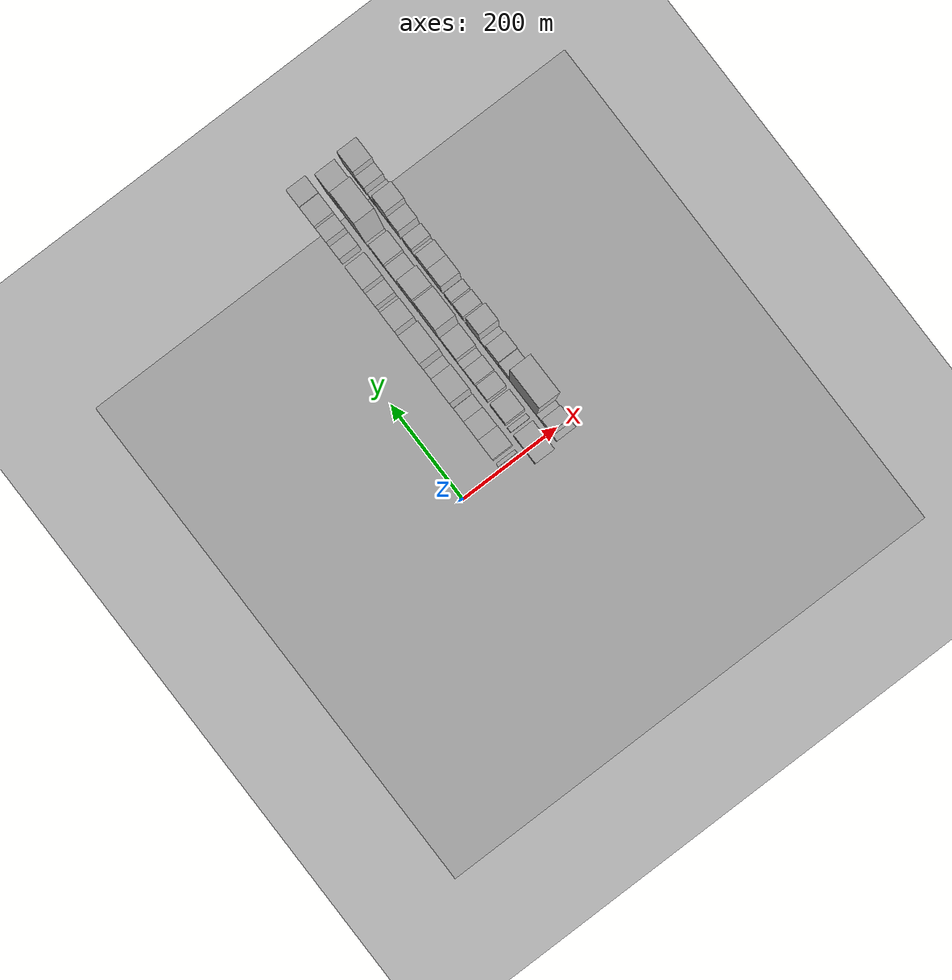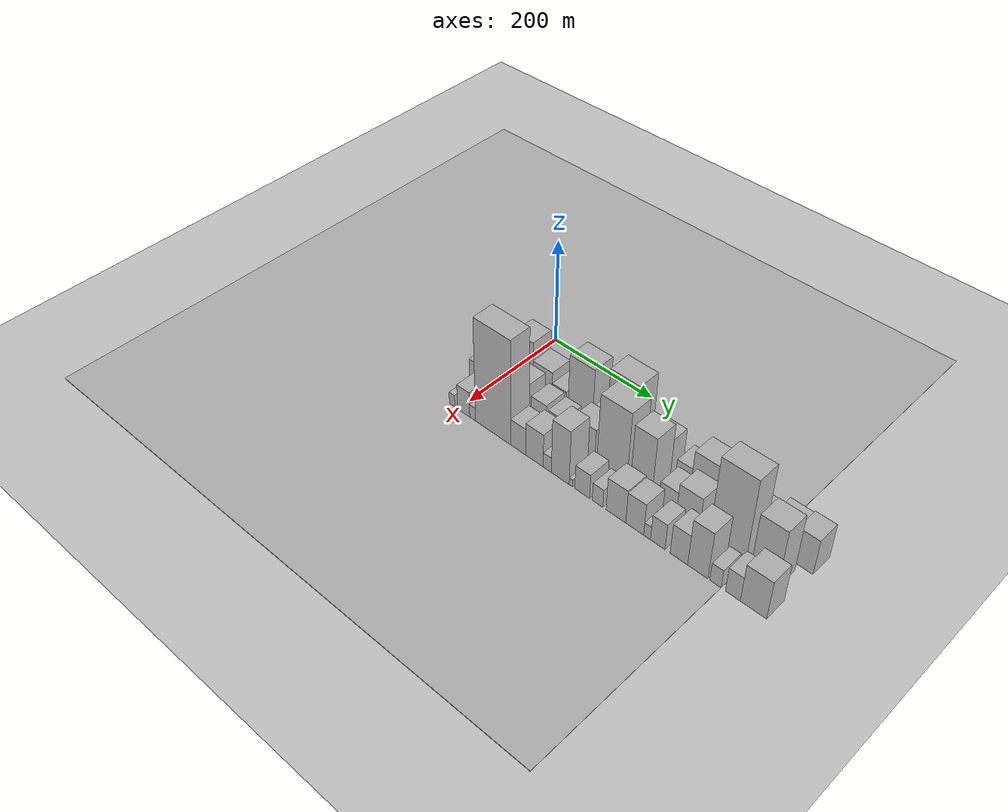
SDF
<sdf version="1.6">
 <world name="default">
  <include><name>ground_plane_1</name><uri>model://HANNAS_ground_plane</uri></include>
  <include>
   <name>ground_plane_2</name>
   <uri>model://HANNAS_ground_plane</uri>
   <pose>100 0 0  0 0 0</pose>
  </include>
  <model name="building_19">
   <static>1</static>
   <pose>100.0000 9.9743 0 0.000000 0.000000 0.000000</pose>
   <link name="link">
    <pose>0 0 7.50 0 0 0</pose>
    <collision name="collision"><geometry><box><size>40.0000 6.6705 15.0000</size></box></geometry></collision>
    <visual name="visual">
     <cast_shadows>0</cast_shadows>
     <geometry><box><size>40.0000 6.6705 15.0000</size></box></geometry>
     <material>
      <script>
       <uri>model://HANNAS_wall/materials/scripts</uri>
       <uri>model://HANNAS_wall/materials/textures</uri>
       <name>vrc/HANNAS_wall</name>
      </script>
     </material>
    </visual>
   </link>
  </model>
  <model name="building_20">
   <static>1</static>
   <pose>100.0000 39.8482 0 0.000000 0.000000 0.000000</pose>
   <link name="link">
    <pose>0 0 52.50 0 0 0</pose>
    <collision name="collision"><geometry><box><size>40.0000 39.0774 105.0000</size></box></geometry></collision>
    <visual name="visual">
     <cast_shadows>0</cast_shadows>
     <geometry><box><size>40.0000 39.0774 105.0000</size></box></geometry>
     <material>
      <script>
       <uri>model://HANNAS_wall/materials/scripts</uri>
       <uri>model://HANNAS_wall/materials/textures</uri>
       <name>vrc/HANNAS_wall</name>
      </script>
     </material>
    </visual>
   </link>
  </model>
  <model name="building_21">
   <static>1</static>
   <pose>100.0000 79.3136 0 0.000000 0.000000 0.000000</pose>
   <link name="link">
    <pose>0 0 34.50 0 0 0</pose>
    <collision name="collision"><geometry><box><size>40.0000 39.8534 69.0000</size></box></geometry></collision>
    <visual name="visual">
     <cast_shadows>0</cast_shadows>
     <geometry><box><size>40.0000 39.8534 69.0000</size></box></geometry>
     <material>
      <script>
       <uri>model://HANNAS_wall/materials/scripts</uri>
       <uri>model://HANNAS_wall/materials/textures</uri>
       <name>vrc/HANNAS_wall</name>
      </script>
     </material>
    </visual>
   </link>
  </model>
  <model name="building_22">
   <static>1</static>
   <pose>100.0000 113.6267 0 0.000000 0.000000 0.000000</pose>
   <link name="link">
    <pose>0 0 24.00 0 0 0</pose>
    <collision name="collision"><geometry><box><size>40.0000 28.7727 48.0000</size></box></geometry></collision>
    <visual name="visual">
     <cast_shadows>0</cast_shadows>
     <geometry><box><size>40.0000 28.7727 48.0000</size></box></geometry>
     <material>
      <script>
       <uri>model://HANNAS_wall/materials/scripts</uri>
       <uri>model://HANNAS_wall/materials/textures</uri>
       <name>vrc/HANNAS_wall</name>
      </script>
     </material>
    </visual>
   </link>
  </model>
  <model name="building_23">
   <static>1</static>
   <pose>100.0000 156.3978 0 0.000000 0.000000 0.000000</pose>
   <link name="link">
    <pose>0 0 63.00 0 0 0</pose>
    <collision name="collision"><geometry><box><size>40.0000 48.7695 126.0000</size></box></geometry></collision>
    <visual name="visual">
     <cast_shadows>0</cast_shadows>
     <geometry><box><size>40.0000 48.7695 126.0000</size></box></geometry>
     <material>
      <script>
       <uri>model://HANNAS_wall/materials/scripts</uri>
       <uri>model://HANNAS_wall/materials/textures</uri>
       <name>vrc/HANNAS_wall</name>
      </script>
     </material>
    </visual>
   </link>
  </model>
  <model name="building_24">
   <static>1</static>
   <pose>100.0000 194.5604 0 0.000000 0.000000 0.000000</pose>
   <link name="link">
    <pose>0 0 27.00 0 0 0</pose>
    <collision name="collision"><geometry><box><size>40.0000 27.5558 54.0000</size></box></geometry></collision>
    <visual name="visual">
     <cast_shadows>0</cast_shadows>
     <geometry><box><size>40.0000 27.5558 54.0000</size></box></geometry>
     <material>
      <script>
       <uri>model://HANNAS_wall/materials/scripts</uri>
       <uri>model://HANNAS_wall/materials/textures</uri>
       <name>vrc/HANNAS_wall</name>
      </script>
     </material>
    </visual>
   </link>
  </model>
  <model name="building_25">
   <static>1</static>
   <pose>100.0000 236.0614 0 0.000000 0.000000 0.000000</pose>
   <link name="link">
    <pose>0 0 73.50 0 0 0</pose>
    <collision name="collision"><geometry><box><size>40.0000 55.4461 147.0000</size></box></geometry></collision>
    <visual name="visual">
     <cast_shadows>0</cast_shadows>
     <geometry><box><size>40.0000 55.4461 147.0000</size></box></geometry>
     <material>
      <script>
       <uri>model://HANNAS_wall/materials/scripts</uri>
       <uri>model://HANNAS_wall/materials/textures</uri>
       <name>vrc/HANNAS_wall</name>
      </script>
     </material>
    </visual>
   </link>
  </model>
  <model name="building_26">
   <static>1</static>
   <pose>100.0000 269.3358 0 0.000000 0.000000 0.000000</pose>
   <link name="link">
    <pose>0 0 13.50 0 0 0</pose>
    <collision name="collision"><geometry><box><size>40.0000 11.1029 27.0000</size></box></geometry></collision>
    <visual name="visual">
     <cast_shadows>0</cast_shadows>
     <geometry><box><size>40.0000 11.1029 27.0000</size></box></geometry>
     <material>
      <script>
       <uri>model://HANNAS_wall/materials/scripts</uri>
       <uri>model://HANNAS_wall/materials/textures</uri>
       <name>vrc/HANNAS_wall</name>
      </script>
     </material>
    </visual>
   </link>
  </model>
  <model name="building_27">
   <static>1</static>
   <pose>100.0000 303.4332 0 0.000000 0.000000 0.000000</pose>
   <link name="link">
    <pose>0 0 37.50 0 0 0</pose>
    <collision name="collision"><geometry><box><size>40.0000 39.0918 75.0000</size></box></geometry></collision>
    <visual name="visual">
     <cast_shadows>0</cast_shadows>
     <geometry><box><size>40.0000 39.0918 75.0000</size></box></geometry>
     <material>
      <script>
       <uri>model://HANNAS_wall/materials/scripts</uri>
       <uri>model://HANNAS_wall/materials/textures</uri>
       <name>vrc/HANNAS_wall</name>
      </script>
     </material>
    </visual>
   </link>
  </model>
  <model name="building_28">
   <static>1</static>
   <pose>100.0000 335.3981 0 0.000000 0.000000 0.000000</pose>
   <link name="link">
    <pose>0 0 7.50 0 0 0</pose>
    <collision name="collision"><geometry><box><size>40.0000 6.8379 15.0000</size></box></geometry></collision>
    <visual name="visual">
     <cast_shadows>0</cast_shadows>
     <geometry><box><size>40.0000 6.8379 15.0000</size></box></geometry>
     <material>
      <script>
       <uri>model://HANNAS_wall/materials/scripts</uri>
       <uri>model://HANNAS_wall/materials/textures</uri>
       <name>vrc/HANNAS_wall</name>
      </script>
     </material>
    </visual>
   </link>
  </model>
  <model name="building_29">
   <static>1</static>
   <pose>100.0000 352.5228 0 0.000000 0.000000 0.000000</pose>
   <link name="link">
    <pose>0 0 27.00 0 0 0</pose>
    <collision name="collision"><geometry><box><size>40.0000 27.4115 54.0000</size></box></geometry></collision>
    <visual name="visual">
     <cast_shadows>0</cast_shadows>
     <geometry><box><size>40.0000 27.4115 54.0000</size></box></geometry>
     <material>
      <script>
       <uri>model://HANNAS_wall/materials/scripts</uri>
       <uri>model://HANNAS_wall/materials/textures</uri>
       <name>vrc/HANNAS_wall</name>
      </script>
     </material>
    </visual>
   </link>
  </model>
  <model name="building_30">
   <static>1</static>
   <pose>100.0000 389.9765 0 0.000000 0.000000 0.000000</pose>
   <link name="link">
    <pose>0 0 45.00 0 0 0</pose>
    <collision name="collision"><geometry><box><size>40.0000 47.4959 90.0000</size></box></geometry></collision>
    <visual name="visual">
     <cast_shadows>0</cast_shadows>
     <geometry><box><size>40.0000 47.4959 90.0000</size></box></geometry>
     <material>
      <script>
       <uri>model://HANNAS_wall/materials/scripts</uri>
       <uri>model://HANNAS_wall/materials/textures</uri>
       <name>vrc/HANNAS_wall</name>
      </script>
     </material>
    </visual>
   </link>
  </model>
  <model name="building_31">
   <static>1</static>
   <pose>100.0000 426.9344 0 0.000000 0.000000 0.000000</pose>
   <link name="link">
    <pose>0 0 7.50 0 0 0</pose>
    <collision name="collision"><geometry><box><size>40.0000 6.4199 15.0000</size></box></geometry></collision>
    <visual name="visual">
     <cast_shadows>0</cast_shadows>
     <geometry><box><size>40.0000 6.4199 15.0000</size></box></geometry>
     <material>
      <script>
       <uri>model://HANNAS_wall/materials/scripts</uri>
       <uri>model://HANNAS_wall/materials/textures</uri>
       <name>vrc/HANNAS_wall</name>
      </script>
     </material>
    </visual>
   </link>
  </model>
  <model name="building_32">
   <static>1</static>
   <pose>100.0000 452.2859 0 0.000000 0.000000 0.000000</pose>
   <link name="link">
    <pose>0 0 22.50 0 0 0</pose>
    <collision name="collision"><geometry><box><size>40.0000 26.2831 45.0000</size></box></geometry></collision>
    <visual name="visual">
     <cast_shadows>0</cast_shadows>
     <geometry><box><size>40.0000 26.2831 45.0000</size></box></geometry>
     <material>
      <script>
       <uri>model://HANNAS_wall/materials/scripts</uri>
       <uri>model://HANNAS_wall/materials/textures</uri>
       <name>vrc/HANNAS_wall</name>
      </script>
     </material>
    </visual>
   </link>
  </model>
  <model name="building_33">
   <static>1</static>
   <pose>100.0000 487.6147 0 0.000000 0.000000 0.000000</pose>
   <link name="link">
    <pose>0 0 25.50 0 0 0</pose>
    <collision name="collision"><geometry><box><size>40.0000 28.3746 51.0000</size></box></geometry></collision>
    <visual name="visual">
     <cast_shadows>0</cast_shadows>
     <geometry><box><size>40.0000 28.3746 51.0000</size></box></geometry>
     <material>
      <script>
       <uri>model://HANNAS_wall/materials/scripts</uri>
       <uri>model://HANNAS_wall/materials/textures</uri>
       <name>vrc/HANNAS_wall</name>
      </script>
     </material>
    </visual>
   </link>
  </model>
  <model name="building_34">
   <static>1</static>
   <pose>100.0000 521.4848 0 0.000000 0.000000 0.000000</pose>
   <link name="link">
    <pose>0 0 33.00 0 0 0</pose>
    <collision name="collision"><geometry><box><size>40.0000 39.3657 66.0000</size></box></geometry></collision>
    <visual name="visual">
     <cast_shadows>0</cast_shadows>
     <geometry><box><size>40.0000 39.3657 66.0000</size></box></geometry>
     <material>
      <script>
       <uri>model://HANNAS_wall/materials/scripts</uri>
       <uri>model://HANNAS_wall/materials/textures</uri>
       <name>vrc/HANNAS_wall</name>
      </script>
     </material>
    </visual>
   </link>
  </model>
  <model name="building_35">
   <static>1</static>
   <pose>100.0000 558.9215 0 0.000000 0.000000 0.000000</pose>
   <link name="link">
    <pose>0 0 34.50 0 0 0</pose>
    <collision name="collision"><geometry><box><size>40.0000 35.5076 69.0000</size></box></geometry></collision>
    <visual name="visual">
     <cast_shadows>0</cast_shadows>
     <geometry><box><size>40.0000 35.5076 69.0000</size></box></geometry>
     <material>
      <script>
       <uri>model://HANNAS_wall/materials/scripts</uri>
       <uri>model://HANNAS_wall/materials/textures</uri>
       <name>vrc/HANNAS_wall</name>
      </script>
     </material>
    </visual>
   </link>
  </model>
  <model name="building_54">
   <static>1</static>
   <pose>152.0000 -12.6384 0 0.000000 0.000000 0.000000</pose>
   <link name="link">
    <pose>0 0 27.00 0 0 0</pose>
    <collision name="collision"><geometry><box><size>40.0000 28.6844 54.0000</size></box></geometry></collision>
    <visual name="visual">
     <cast_shadows>0</cast_shadows>
     <geometry><box><size>40.0000 28.6844 54.0000</size></box></geometry>
     <material>
      <script>
       <uri>model://HANNAS_wall/materials/scripts</uri>
       <uri>model://HANNAS_wall/materials/textures</uri>
       <name>vrc/HANNAS_wall</name>
      </script>
     </material>
    </visual>
   </link>
  </model>
  <model name="building_55">
   <static>1</static>
   <pose>152.0000 17.1598 0 0.000000 0.000000 0.000000</pose>
   <link name="link">
    <pose>0 0 28.50 0 0 0</pose>
    <collision name="collision"><geometry><box><size>40.0000 30.9120 57.0000</size></box></geometry></collision>
    <visual name="visual">
     <cast_shadows>0</cast_shadows>
     <geometry><box><size>40.0000 30.9120 57.0000</size></box></geometry>
     <material>
      <script>
       <uri>model://HANNAS_wall/materials/scripts</uri>
       <uri>model://HANNAS_wall/materials/textures</uri>
       <name>vrc/HANNAS_wall</name>
      </script>
     </material>
    </visual>
   </link>
  </model>
  <model name="building_56">
   <static>1</static>
   <pose>152.0000 44.6072 0 0.000000 0.000000 0.000000</pose>
   <link name="link">
    <pose>0 0 10.50 0 0 0</pose>
    <collision name="collision"><geometry><box><size>40.0000 9.9827 21.0000</size></box></geometry></collision>
    <visual name="visual">
     <cast_shadows>0</cast_shadows>
     <geometry><box><size>40.0000 9.9827 21.0000</size></box></geometry>
     <material>
      <script>
       <uri>model://HANNAS_wall/materials/scripts</uri>
       <uri>model://HANNAS_wall/materials/textures</uri>
       <name>vrc/HANNAS_wall</name>
      </script>
     </material>
    </visual>
   </link>
  </model>
  <model name="building_57">
   <static>1</static>
   <pose>152.0000 75.2564 0 0.000000 0.000000 0.000000</pose>
   <link name="link">
    <pose>0 0 37.50 0 0 0</pose>
    <collision name="collision"><geometry><box><size>40.0000 41.3159 75.0000</size></box></geometry></collision>
    <visual name="visual">
     <cast_shadows>0</cast_shadows>
     <geometry><box><size>40.0000 41.3159 75.0000</size></box></geometry>
     <material>
      <script>
       <uri>model://HANNAS_wall/materials/scripts</uri>
       <uri>model://HANNAS_wall/materials/textures</uri>
       <name>vrc/HANNAS_wall</name>
      </script>
     </material>
    </visual>
   </link>
  </model>
  <model name="building_58">
   <static>1</static>
   <pose>152.0000 119.2833 0 0.000000 0.000000 0.000000</pose>
   <link name="link">
    <pose>0 0 30.00 0 0 0</pose>
    <collision name="collision"><geometry><box><size>40.0000 30.7379 60.0000</size></box></geometry></collision>
    <visual name="visual">
     <cast_shadows>0</cast_shadows>
     <geometry><box><size>40.0000 30.7379 60.0000</size></box></geometry>
     <material>
      <script>
       <uri>model://HANNAS_wall/materials/scripts</uri>
       <uri>model://HANNAS_wall/materials/textures</uri>
       <name>vrc/HANNAS_wall</name>
      </script>
     </material>
    </visual>
   </link>
  </model>
  <model name="building_59">
   <static>1</static>
   <pose>152.0000 153.0333 0 0.000000 0.000000 0.000000</pose>
   <link name="link">
    <pose>0 0 27.00 0 0 0</pose>
    <collision name="collision"><geometry><box><size>40.0000 30.7620 54.0000</size></box></geometry></collision>
    <visual name="visual">
     <cast_shadows>0</cast_shadows>
     <geometry><box><size>40.0000 30.7620 54.0000</size></box></geometry>
     <material>
      <script>
       <uri>model://HANNAS_wall/materials/scripts</uri>
       <uri>model://HANNAS_wall/materials/textures</uri>
       <name>vrc/HANNAS_wall</name>
      </script>
     </material>
    </visual>
   </link>
  </model>
  <model name="building_60">
   <static>1</static>
   <pose>152.0000 177.4689 0 0.000000 0.000000 0.000000</pose>
   <link name="link">
    <pose>0 0 16.50 0 0 0</pose>
    <collision name="collision"><geometry><box><size>40.0000 18.1092 33.0000</size></box></geometry></collision>
    <visual name="visual">
     <cast_shadows>0</cast_shadows>
     <geometry><box><size>40.0000 18.1092 33.0000</size></box></geometry>
     <material>
      <script>
       <uri>model://HANNAS_wall/materials/scripts</uri>
       <uri>model://HANNAS_wall/materials/textures</uri>
       <name>vrc/HANNAS_wall</name>
      </script>
     </material>
    </visual>
   </link>
  </model>
  <model name="building_61">
   <static>1</static>
   <pose>152.0000 208.6309 0 0.000000 0.000000 0.000000</pose>
   <link name="link">
    <pose>0 0 37.50 0 0 0</pose>
    <collision name="collision"><geometry><box><size>40.0000 44.2148 75.0000</size></box></geometry></collision>
    <visual name="visual">
     <cast_shadows>0</cast_shadows>
     <geometry><box><size>40.0000 44.2148 75.0000</size></box></geometry>
     <material>
      <script>
       <uri>model://HANNAS_wall/materials/scripts</uri>
       <uri>model://HANNAS_wall/materials/textures</uri>
       <name>vrc/HANNAS_wall</name>
      </script>
     </material>
    </visual>
   </link>
  </model>
  <model name="building_62">
   <static>1</static>
   <pose>152.0000 263.2704 0 0.000000 0.000000 0.000000</pose>
   <link name="link">
    <pose>0 0 75.00 0 0 0</pose>
    <collision name="collision"><geometry><box><size>40.0000 57.0642 150.0000</size></box></geometry></collision>
    <visual name="visual">
     <cast_shadows>0</cast_shadows>
     <geometry><box><size>40.0000 57.0642 150.0000</size></box></geometry>
     <material>
      <script>
       <uri>model://HANNAS_wall/materials/scripts</uri>
       <uri>model://HANNAS_wall/materials/textures</uri>
       <name>vrc/HANNAS_wall</name>
      </script>
     </material>
    </visual>
   </link>
  </model>
  <model name="building_63">
   <static>1</static>
   <pose>152.0000 317.6546 0 0.000000 0.000000 0.000000</pose>
   <link name="link">
    <pose>0 0 66.00 0 0 0</pose>
    <collision name="collision"><geometry><box><size>40.0000 39.7042 132.0000</size></box></geometry></collision>
    <visual name="visual">
     <cast_shadows>0</cast_shadows>
     <geometry><box><size>40.0000 39.7042 132.0000</size></box></geometry>
     <material>
      <script>
       <uri>model://HANNAS_wall/materials/scripts</uri>
       <uri>model://HANNAS_wall/materials/textures</uri>
       <name>vrc/HANNAS_wall</name>
      </script>
     </material>
    </visual>
   </link>
  </model>
  <model name="building_64">
   <static>1</static>
   <pose>152.0000 343.7132 0 0.000000 0.000000 0.000000</pose>
   <link name="link">
    <pose>0 0 13.50 0 0 0</pose>
    <collision name="collision"><geometry><box><size>40.0000 12.4129 27.0000</size></box></geometry></collision>
    <visual name="visual">
     <cast_shadows>0</cast_shadows>
     <geometry><box><size>40.0000 12.4129 27.0000</size></box></geometry>
     <material>
      <script>
       <uri>model://HANNAS_wall/materials/scripts</uri>
       <uri>model://HANNAS_wall/materials/textures</uri>
       <name>vrc/HANNAS_wall</name>
      </script>
     </material>
    </visual>
   </link>
  </model>
  <model name="building_65">
   <static>1</static>
   <pose>152.0000 365.7689 0 0.000000 0.000000 0.000000</pose>
   <link name="link">
    <pose>0 0 28.50 0 0 0</pose>
    <collision name="collision"><geometry><box><size>40.0000 31.6985 57.0000</size></box></geometry></collision>
    <visual name="visual">
     <cast_shadows>0</cast_shadows>
     <geometry><box><size>40.0000 31.6985 57.0000</size></box></geometry>
     <material>
      <script>
       <uri>model://HANNAS_wall/materials/scripts</uri>
       <uri>model://HANNAS_wall/materials/textures</uri>
       <name>vrc/HANNAS_wall</name>
      </script>
     </material>
    </visual>
   </link>
  </model>
  <model name="building_66">
   <static>1</static>
   <pose>152.0000 401.9475 0 0.000000 0.000000 0.000000</pose>
   <link name="link">
    <pose>0 0 37.50 0 0 0</pose>
    <collision name="collision"><geometry><box><size>40.0000 40.6587 75.0000</size></box></geometry></collision>
    <visual name="visual">
     <cast_shadows>0</cast_shadows>
     <geometry><box><size>40.0000 40.6587 75.0000</size></box></geometry>
     <material>
      <script>
       <uri>model://HANNAS_wall/materials/scripts</uri>
       <uri>model://HANNAS_wall/materials/textures</uri>
       <name>vrc/HANNAS_wall</name>
      </script>
     </material>
    </visual>
   </link>
  </model>
  <model name="building_67">
   <static>1</static>
   <pose>152.0000 434.9628 0 0.000000 0.000000 0.000000</pose>
   <link name="link">
    <pose>0 0 10.50 0 0 0</pose>
    <collision name="collision"><geometry><box><size>40.0000 9.3719 21.0000</size></box></geometry></collision>
    <visual name="visual">
     <cast_shadows>0</cast_shadows>
     <geometry><box><size>40.0000 9.3719 21.0000</size></box></geometry>
     <material>
      <script>
       <uri>model://HANNAS_wall/materials/scripts</uri>
       <uri>model://HANNAS_wall/materials/textures</uri>
       <name>vrc/HANNAS_wall</name>
      </script>
     </material>
    </visual>
   </link>
  </model>
  <model name="building_68">
   <static>1</static>
   <pose>152.0000 470.4994 0 0.000000 0.000000 0.000000</pose>
   <link name="link">
    <pose>0 0 85.50 0 0 0</pose>
    <collision name="collision"><geometry><box><size>40.0000 61.7014 171.0000</size></box></geometry></collision>
    <visual name="visual">
     <cast_shadows>0</cast_shadows>
     <geometry><box><size>40.0000 61.7014 171.0000</size></box></geometry>
     <material>
      <script>
       <uri>model://HANNAS_wall/materials/scripts</uri>
       <uri>model://HANNAS_wall/materials/textures</uri>
       <name>vrc/HANNAS_wall</name>
      </script>
     </material>
    </visual>
   </link>
  </model>
  <model name="building_69">
   <static>1</static>
   <pose>152.0000 532.7564 0 0.000000 0.000000 0.000000</pose>
   <link name="link">
    <pose>0 0 57.00 0 0 0</pose>
    <collision name="collision"><geometry><box><size>40.0000 44.8126 114.0000</size></box></geometry></collision>
    <visual name="visual">
     <cast_shadows>0</cast_shadows>
     <geometry><box><size>40.0000 44.8126 114.0000</size></box></geometry>
     <material>
      <script>
       <uri>model://HANNAS_wall/materials/scripts</uri>
       <uri>model://HANNAS_wall/materials/textures</uri>
       <name>vrc/HANNAS_wall</name>
      </script>
     </material>
    </visual>
   </link>
  </model>
  <model name="building_88">
   <static>1</static>
   <pose>204.0000 -13.3719 0 0.000000 0.000000 0.000000</pose>
   <link name="link">
    <pose>0 0 12.00 0 0 0</pose>
    <collision name="collision"><geometry><box><size>40.0000 11.7182 24.0000</size></box></geometry></collision>
    <visual name="visual">
     <cast_shadows>0</cast_shadows>
     <geometry><box><size>40.0000 11.7182 24.0000</size></box></geometry>
     <material>
      <script>
       <uri>model://HANNAS_wall/materials/scripts</uri>
       <uri>model://HANNAS_wall/materials/textures</uri>
       <name>vrc/HANNAS_wall</name>
      </script>
     </material>
    </visual>
   </link>
  </model>
  <model name="building_89">
   <static>1</static>
   <pose>204.0000 11.6307 0 0.000000 0.000000 0.000000</pose>
   <link name="link">
    <pose>0 0 25.50 0 0 0</pose>
    <collision name="collision"><geometry><box><size>40.0000 26.2870 51.0000</size></box></geometry></collision>
    <visual name="visual">
     <cast_shadows>0</cast_shadows>
     <geometry><box><size>40.0000 26.2870 51.0000</size></box></geometry>
     <material>
      <script>
       <uri>model://HANNAS_wall/materials/scripts</uri>
       <uri>model://HANNAS_wall/materials/textures</uri>
       <name>vrc/HANNAS_wall</name>
      </script>
     </material>
    </visual>
   </link>
  </model>
  <model name="building_90">
   <static>1</static>
   <pose>204.0000 30.9941 0 0.000000 0.000000 0.000000</pose>
   <link name="link">
    <pose>0 0 13.50 0 0 0</pose>
    <collision name="collision"><geometry><box><size>40.0000 12.4397 27.0000</size></box></geometry></collision>
    <visual name="visual">
     <cast_shadows>0</cast_shadows>
     <geometry><box><size>40.0000 12.4397 27.0000</size></box></geometry>
     <material>
      <script>
       <uri>model://HANNAS_wall/materials/scripts</uri>
       <uri>model://HANNAS_wall/materials/textures</uri>
       <name>vrc/HANNAS_wall</name>
      </script>
     </material>
    </visual>
   </link>
  </model>
  <model name="building_91">
   <static>1</static>
   <pose>204.0000 73.9852 0 0.000000 0.000000 0.000000</pose>
   <link name="link">
    <pose>0 0 103.50 0 0 0</pose>
    <collision name="collision"><geometry><box><size>40.0000 73.5426 207.0000</size></box></geometry></collision>
    <visual name="visual">
     <cast_shadows>0</cast_shadows>
     <geometry><box><size>40.0000 73.5426 207.0000</size></box></geometry>
     <material>
      <script>
       <uri>model://HANNAS_wall/materials/scripts</uri>
       <uri>model://HANNAS_wall/materials/textures</uri>
       <name>vrc/HANNAS_wall</name>
      </script>
     </material>
    </visual>
   </link>
  </model>
  <model name="building_92">
   <static>1</static>
   <pose>204.0000 126.1771 0 0.000000 0.000000 0.000000</pose>
   <link name="link">
    <pose>0 0 27.00 0 0 0</pose>
    <collision name="collision"><geometry><box><size>40.0000 30.8412 54.0000</size></box></geometry></collision>
    <visual name="visual">
     <cast_shadows>0</cast_shadows>
     <geometry><box><size>40.0000 30.8412 54.0000</size></box></geometry>
     <material>
      <script>
       <uri>model://HANNAS_wall/materials/scripts</uri>
       <uri>model://HANNAS_wall/materials/textures</uri>
       <name>vrc/HANNAS_wall</name>
      </script>
     </material>
    </visual>
   </link>
  </model>
  <model name="building_93">
   <static>1</static>
   <pose>204.0000 158.9392 0 0.000000 0.000000 0.000000</pose>
   <link name="link">
    <pose>0 0 33.00 0 0 0</pose>
    <collision name="collision"><geometry><box><size>40.0000 34.6830 66.0000</size></box></geometry></collision>
    <visual name="visual">
     <cast_shadows>0</cast_shadows>
     <geometry><box><size>40.0000 34.6830 66.0000</size></box></geometry>
     <material>
      <script>
       <uri>model://HANNAS_wall/materials/scripts</uri>
       <uri>model://HANNAS_wall/materials/textures</uri>
       <name>vrc/HANNAS_wall</name>
      </script>
     </material>
    </visual>
   </link>
  </model>
  <model name="building_94">
   <static>1</static>
   <pose>204.0000 184.3634 0 0.000000 0.000000 0.000000</pose>
   <link name="link">
    <pose>0 0 15.00 0 0 0</pose>
    <collision name="collision"><geometry><box><size>40.0000 16.1654 30.0000</size></box></geometry></collision>
    <visual name="visual">
     <cast_shadows>0</cast_shadows>
     <geometry><box><size>40.0000 16.1654 30.0000</size></box></geometry>
     <material>
      <script>
       <uri>model://HANNAS_wall/materials/scripts</uri>
       <uri>model://HANNAS_wall/materials/textures</uri>
       <name>vrc/HANNAS_wall</name>
      </script>
     </material>
    </visual>
   </link>
  </model>
  <model name="building_95">
   <static>1</static>
   <pose>204.0000 209.8418 0 0.000000 0.000000 0.000000</pose>
   <link name="link">
    <pose>0 0 54.00 0 0 0</pose>
    <collision name="collision"><geometry><box><size>40.0000 34.7915 108.0000</size></box></geometry></collision>
    <visual name="visual">
     <cast_shadows>0</cast_shadows>
     <geometry><box><size>40.0000 34.7915 108.0000</size></box></geometry>
     <material>
      <script>
       <uri>model://HANNAS_wall/materials/scripts</uri>
       <uri>model://HANNAS_wall/materials/textures</uri>
       <name>vrc/HANNAS_wall</name>
      </script>
     </material>
    </visual>
   </link>
  </model>
  <model name="building_96">
   <static>1</static>
   <pose>204.0000 230.7332 0 0.000000 0.000000 0.000000</pose>
   <link name="link">
    <pose>0 0 7.50 0 0 0</pose>
    <collision name="collision"><geometry><box><size>40.0000 6.9913 15.0000</size></box></geometry></collision>
    <visual name="visual">
     <cast_shadows>0</cast_shadows>
     <geometry><box><size>40.0000 6.9913 15.0000</size></box></geometry>
     <material>
      <script>
       <uri>model://HANNAS_wall/materials/scripts</uri>
       <uri>model://HANNAS_wall/materials/textures</uri>
       <name>vrc/HANNAS_wall</name>
      </script>
     </material>
    </visual>
   </link>
  </model>
  <model name="building_97">
   <static>1</static>
   <pose>204.0000 252.2901 0 0.000000 0.000000 0.000000</pose>
   <link name="link">
    <pose>0 0 24.00 0 0 0</pose>
    <collision name="collision"><geometry><box><size>40.0000 28.1225 48.0000</size></box></geometry></collision>
    <visual name="visual">
     <cast_shadows>0</cast_shadows>
     <geometry><box><size>40.0000 28.1225 48.0000</size></box></geometry>
     <material>
      <script>
       <uri>model://HANNAS_wall/materials/scripts</uri>
       <uri>model://HANNAS_wall/materials/textures</uri>
       <name>vrc/HANNAS_wall</name>
      </script>
     </material>
    </visual>
   </link>
  </model>
  <model name="building_98">
   <static>1</static>
   <pose>204.0000 281.3752 0 0.000000 0.000000 0.000000</pose>
   <link name="link">
    <pose>0 0 18.00 0 0 0</pose>
    <collision name="collision"><geometry><box><size>40.0000 20.0475 36.0000</size></box></geometry></collision>
    <visual name="visual">
     <cast_shadows>0</cast_shadows>
     <geometry><box><size>40.0000 20.0475 36.0000</size></box></geometry>
     <material>
      <script>
       <uri>model://HANNAS_wall/materials/scripts</uri>
       <uri>model://HANNAS_wall/materials/textures</uri>
       <name>vrc/HANNAS_wall</name>
      </script>
     </material>
    </visual>
   </link>
  </model>
  <model name="building_99">
   <static>1</static>
   <pose>204.0000 315.5288 0 0.000000 0.000000 0.000000</pose>
   <link name="link">
    <pose>0 0 33.00 0 0 0</pose>
    <collision name="collision"><geometry><box><size>40.0000 36.2597 66.0000</size></box></geometry></collision>
    <visual name="visual">
     <cast_shadows>0</cast_shadows>
     <geometry><box><size>40.0000 36.2597 66.0000</size></box></geometry>
     <material>
      <script>
       <uri>model://HANNAS_wall/materials/scripts</uri>
       <uri>model://HANNAS_wall/materials/textures</uri>
       <name>vrc/HANNAS_wall</name>
      </script>
     </material>
    </visual>
   </link>
  </model>
  <model name="building_100">
   <static>1</static>
   <pose>204.0000 349.8924 0 0.000000 0.000000 0.000000</pose>
   <link name="link">
    <pose>0 0 31.50 0 0 0</pose>
    <collision name="collision"><geometry><box><size>40.0000 32.4675 63.0000</size></box></geometry></collision>
    <visual name="visual">
     <cast_shadows>0</cast_shadows>
     <geometry><box><size>40.0000 32.4675 63.0000</size></box></geometry>
     <material>
      <script>
       <uri>model://HANNAS_wall/materials/scripts</uri>
       <uri>model://HANNAS_wall/materials/textures</uri>
       <name>vrc/HANNAS_wall</name>
      </script>
     </material>
    </visual>
   </link>
  </model>
  <model name="building_101">
   <static>1</static>
   <pose>204.0000 372.2061 0 0.000000 0.000000 0.000000</pose>
   <link name="link">
    <pose>0 0 13.50 0 0 0</pose>
    <collision name="collision"><geometry><box><size>40.0000 12.1599 27.0000</size></box></geometry></collision>
    <visual name="visual">
     <cast_shadows>0</cast_shadows>
     <geometry><box><size>40.0000 12.1599 27.0000</size></box></geometry>
     <material>
      <script>
       <uri>model://HANNAS_wall/materials/scripts</uri>
       <uri>model://HANNAS_wall/materials/textures</uri>
       <name>vrc/HANNAS_wall</name>
      </script>
     </material>
    </visual>
   </link>
  </model>
  <model name="building_102">
   <static>1</static>
   <pose>204.0000 391.1003 0 0.000000 0.000000 0.000000</pose>
   <link name="link">
    <pose>0 0 25.50 0 0 0</pose>
    <collision name="collision"><geometry><box><size>40.0000 25.6285 51.0000</size></box></geometry></collision>
    <visual name="visual">
     <cast_shadows>0</cast_shadows>
     <geometry><box><size>40.0000 25.6285 51.0000</size></box></geometry>
     <material>
      <script>
       <uri>model://HANNAS_wall/materials/scripts</uri>
       <uri>model://HANNAS_wall/materials/textures</uri>
       <name>vrc/HANNAS_wall</name>
      </script>
     </material>
    </visual>
   </link>
  </model>
  <model name="building_103">
   <static>1</static>
   <pose>204.0000 428.0823 0 0.000000 0.000000 0.000000</pose>
   <link name="link">
    <pose>0 0 30.00 0 0 0</pose>
    <collision name="collision"><geometry><box><size>40.0000 30.3356 60.0000</size></box></geometry></collision>
    <visual name="visual">
     <cast_shadows>0</cast_shadows>
     <geometry><box><size>40.0000 30.3356 60.0000</size></box></geometry>
     <material>
      <script>
       <uri>model://HANNAS_wall/materials/scripts</uri>
       <uri>model://HANNAS_wall/materials/textures</uri>
       <name>vrc/HANNAS_wall</name>
      </script>
     </material>
    </visual>
   </link>
  </model>
  <model name="building_104">
   <static>1</static>
   <pose>204.0000 460.5320 0 0.000000 0.000000 0.000000</pose>
   <link name="link">
    <pose>0 0 46.50 0 0 0</pose>
    <collision name="collision"><geometry><box><size>40.0000 34.5637 93.0000</size></box></geometry></collision>
    <visual name="visual">
     <cast_shadows>0</cast_shadows>
     <geometry><box><size>40.0000 34.5637 93.0000</size></box></geometry>
     <material>
      <script>
       <uri>model://HANNAS_wall/materials/scripts</uri>
       <uri>model://HANNAS_wall/materials/textures</uri>
       <name>vrc/HANNAS_wall</name>
      </script>
     </material>
    </visual>
   </link>
  </model>
  <model name="building_105">
   <static>1</static>
   <pose>204.0000 490.4271 0 0.000000 0.000000 0.000000</pose>
   <link name="link">
    <pose>0 0 18.00 0 0 0</pose>
    <collision name="collision"><geometry><box><size>40.0000 19.2266 36.0000</size></box></geometry></collision>
    <visual name="visual">
     <cast_shadows>0</cast_shadows>
     <geometry><box><size>40.0000 19.2266 36.0000</size></box></geometry>
     <material>
      <script>
       <uri>model://HANNAS_wall/materials/scripts</uri>
       <uri>model://HANNAS_wall/materials/textures</uri>
       <name>vrc/HANNAS_wall</name>
      </script>
     </material>
    </visual>
   </link>
  </model>
  <model name="building_106">
   <static>1</static>
   <pose>204.0000 519.3168 0 0.000000 0.000000 0.000000</pose>
   <link name="link">
    <pose>0 0 24.00 0 0 0</pose>
    <collision name="collision"><geometry><box><size>40.0000 24.5527 48.0000</size></box></geometry></collision>
    <visual name="visual">
     <cast_shadows>0</cast_shadows>
     <geometry><box><size>40.0000 24.5527 48.0000</size></box></geometry>
     <material>
      <script>
       <uri>model://HANNAS_wall/materials/scripts</uri>
       <uri>model://HANNAS_wall/materials/textures</uri>
       <name>vrc/HANNAS_wall</name>
      </script>
     </material>
    </visual>
   </link>
  </model>
  <model name="building_107">
   <static>1</static>
   <pose>204.0000 552.9032 0 0.000000 0.000000 0.000000</pose>
   <link name="link">
    <pose>0 0 37.50 0 0 0</pose>
    <collision name="collision"><geometry><box><size>40.0000 42.6201 75.0000</size></box></geometry></collision>
    <visual name="visual">
     <cast_shadows>0</cast_shadows>
     <geometry><box><size>40.0000 42.6201 75.0000</size></box></geometry>
     <material>
      <script>
       <uri>model://HANNAS_wall/materials/scripts</uri>
       <uri>model://HANNAS_wall/materials/textures</uri>
       <name>vrc/HANNAS_wall</name>
      </script>
     </material>
    </visual>
   </link>
  </model>
 </world>
</sdf>
